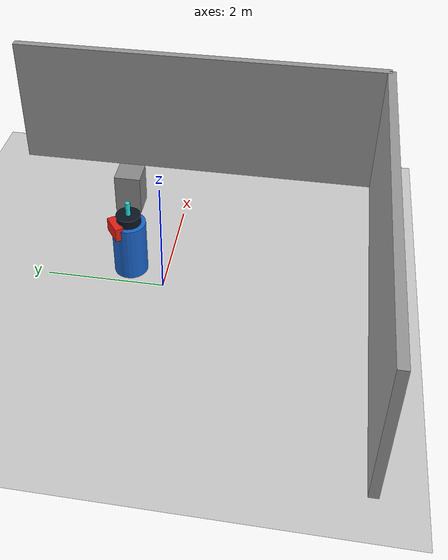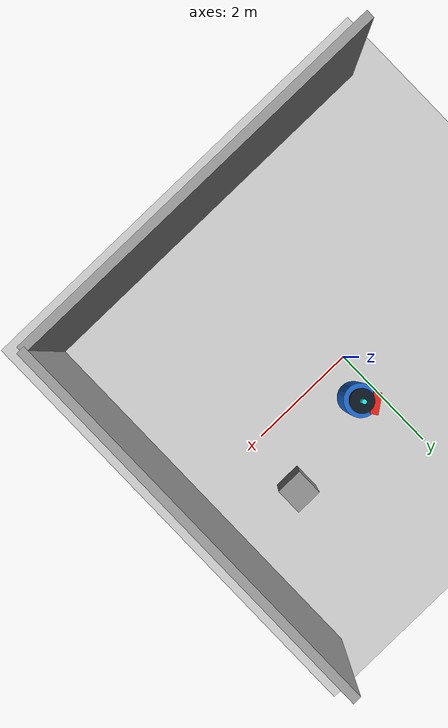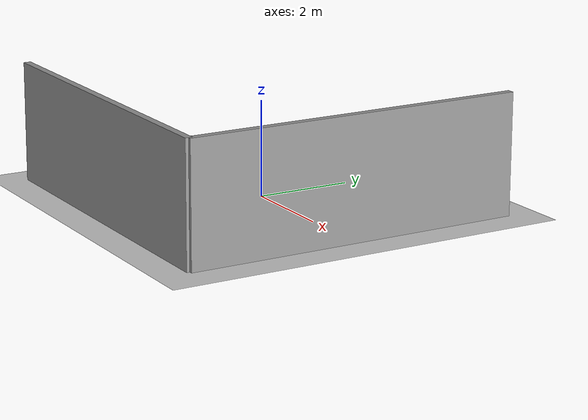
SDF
<sdf version="1.7">
 <world name="default">
  <plugin name="socnav_plugin" filename="libSocNavPlugin.so">
   <robot_name>robot</robot_name>
   <trajectory_file>/home/hunav_gz_classic_ws/SocNav3_trajectories/src6/000003898.json</trajectory_file>
   <human_slots>2</human_slots>
   <goal_angle_mesh>
    <angle_threshold>2.98901585639</angle_threshold>
    <uri>/home/hunav_gz_classic_ws/src/socnav_gazebo_reproducer/meshes/000003898_goal_angle_00.stl</uri>
   </goal_angle_mesh>
  </plugin>
  <light name="sun" type="directional">
   <pose>0 0 10 0 -0 0</pose>
   <diffuse>0.8 0.8 0.8 1</diffuse>
   <specular>0.2 0.2 0.2 1</specular>
   <attenuation>
    <range>1000</range>
    <constant>0.9</constant>
    <linear>0.01</linear>
    <quadratic>0.001</quadratic>
   </attenuation>
   <direction>-0.5 0.1 -0.9</direction>
   <spot><inner_angle>0</inner_angle><outer_angle>0</outer_angle><falloff>0</falloff></spot>
  </light>
  <model name="ground_plane">
   <static>1</static>
   <link name="link">
    <collision name="collision">
     <geometry><plane><normal>0 0 1</normal><size>100 100</size></plane></geometry>
     <surface><friction><ode><mu>100</mu><mu2>50</mu2></ode></friction></surface>
    </collision>
    <visual name="visual">
     <cast_shadows>0</cast_shadows>
     <geometry><plane><normal>0 0 1</normal><size>100 100</size></plane></geometry>
     <material>
      <script><uri>file://media/materials/scripts/kitchen.material</uri><name>Kitchen/CounterTop_H</name></script>
     </material>
    </visual>
   </link>
  </model>
  <gravity>0 0 -9.8</gravity>
  <magnetic_field>6e-06 2.3e-05 -4.2e-05</magnetic_field>
  <atmosphere type="adiabatic"/>
  <physics type="ode">
   <max_step_size>0.001</max_step_size>
   <real_time_factor>1</real_time_factor>
   <real_time_update_rate>1000</real_time_update_rate>
  </physics>
  <scene><ambient>0.4 0.4 0.4 1</ambient><background>0.7 0.7 0.7 1</background><shadows>1</shadows></scene>
  <audio><device>default</device></audio>
  <spherical_coordinates>
   <surface_model>EARTH_WGS84</surface_model>
   <latitude_deg>0</latitude_deg>
   <longitude_deg>0</longitude_deg>
   <elevation>0</elevation>
   <heading_deg>0</heading_deg>
  </spherical_coordinates>
  <model name="robot">
   <pose>0.3691358847858467 0.6278902029102514 0.5 0 0 2.1971895801503183</pose>
   <link name="link">
    <collision name="collision">
     <geometry><cylinder><radius>0.2872733916926037</radius><length>1.0</length></cylinder></geometry>
    </collision>
    <visual name="visual">
     <geometry><cylinder><radius>0.2872733916926037</radius><length>1.0</length></cylinder></geometry>
     <material><ambient>0.1 0.4 0.8 1</ambient><diffuse>0.1 0.4 0.8 1</diffuse></material>
    </visual>
    <visual name="robot_top">
     <pose>0 0 0.58 0 0 0</pose>
     <geometry><cylinder><radius>0.20683684201867464</radius><length>0.16</length></cylinder></geometry>
     <material><ambient>0.04 0.08 0.12 1</ambient><diffuse>0.04 0.08 0.12 1</diffuse></material>
    </visual>
    <visual name="robot_front">
     <pose>0.2413096490217871 0 0.44 0 0 0</pose>
     <geometry><box><size>0.13789122801244977 0.36770994136653273 0.24</size></box></geometry>
     <material><ambient>0.9 0.12 0.08 1</ambient><diffuse>0.9 0.12 0.08 1</diffuse></material>
    </visual>
    <visual name="robot_sensor">
     <pose>0 0 0.78 0 0 0</pose>
     <geometry><cylinder><radius>0.04021827483696452</radius><length>0.24</length></cylinder></geometry>
     <material><ambient>0.1 0.9 0.9 1</ambient><diffuse>0.1 0.9 0.9 1</diffuse></material>
    </visual>
   </link>
  </model>
  <model name="static_object_0">
   <static>true</static>
   <pose>2.1486241203827374 1.0447917637735644 0.375 0 0 0</pose>
   <link name="link">
    <collision name="collision">
     <geometry><box><size>0.4833529730839766 0.4833529730839766 0.75</size></box></geometry>
    </collision>
    <visual name="visual">
     <geometry><box><size>0.4833529730839766 0.4833529730839766 0.75</size></box></geometry>
     <material><ambient>0.55 0.55 0.55 1</ambient><diffuse>0.55 0.55 0.55 1</diffuse></material>
    </visual>
   </link>
  </model>
  <model name="simple_world_test">
   <link name="Wall_0">
    <collision name="Wall_0_Collision">
     <geometry><box><size>7.061995200459817 0.15 2.5</size></box></geometry>
     <pose>0 0 1.25 0 -0 0</pose>
    </collision>
    <visual name="Wall_0_Visual">
     <pose>0 0 1.25 0 -0 0</pose>
     <geometry><box><size>7.061995200459817 0.15 2.5</size></box></geometry>
     <material>
      <script><uri>file://media/materials/scripts/gazebo.material</uri><name>Gazebo/Grey</name></script>
      <ambient>1 1 1 1</ambient>
     </material>
     <meta><layer>0</layer></meta>
    </visual>
    <pose>3.520997600229909 0.0 0 0 -0 -1.5707963267948966</pose>
   </link>
   <link name="Wall_1">
    <collision name="Wall_1_Collision">
     <geometry><box><size>7.061995200459817 0.15 2.5</size></box></geometry>
     <pose>0 0 1.25 0 -0 0</pose>
    </collision>
    <visual name="Wall_1_Visual">
     <pose>0 0 1.25 0 -0 0</pose>
     <geometry><box><size>7.061995200459817 0.15 2.5</size></box></geometry>
     <material>
      <script><uri>file://media/materials/scripts/gazebo.material</uri><name>Gazebo/Grey</name></script>
      <ambient>1 1 1 1</ambient>
     </material>
     <meta><layer>0</layer></meta>
    </visual>
    <pose>0.0 -3.520997600229909 0 0 -0 -3.141592653589793</pose>
   </link>
   <static>1</static>
  </model>
 </world>
</sdf>
